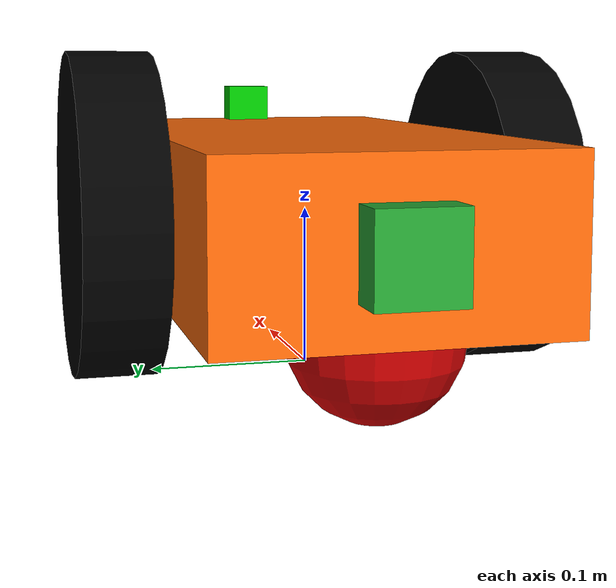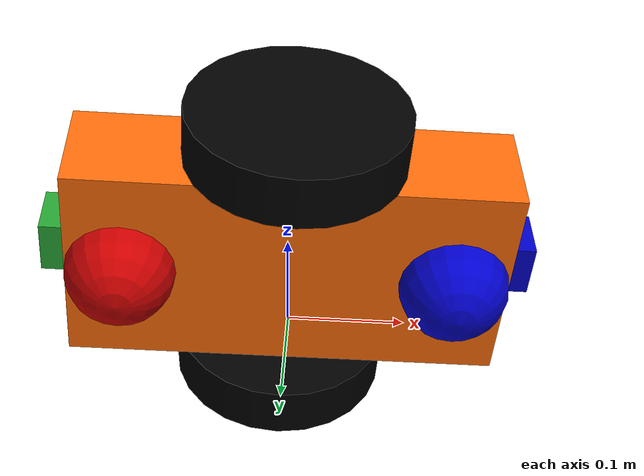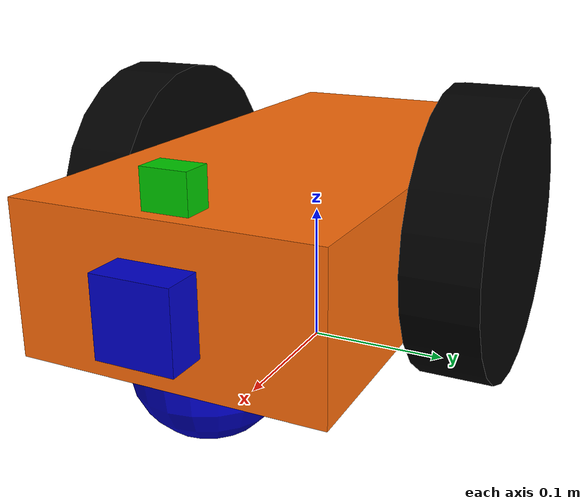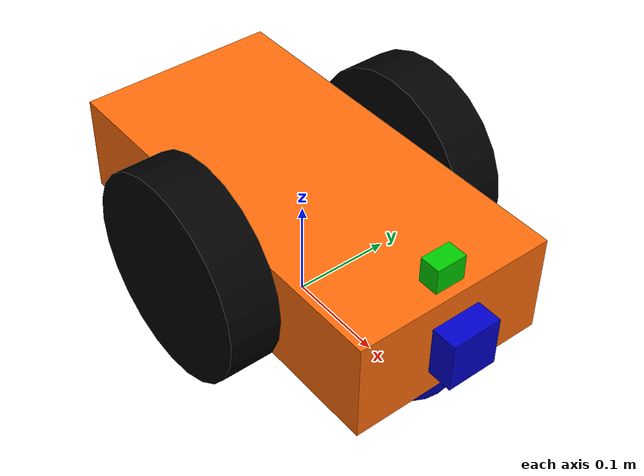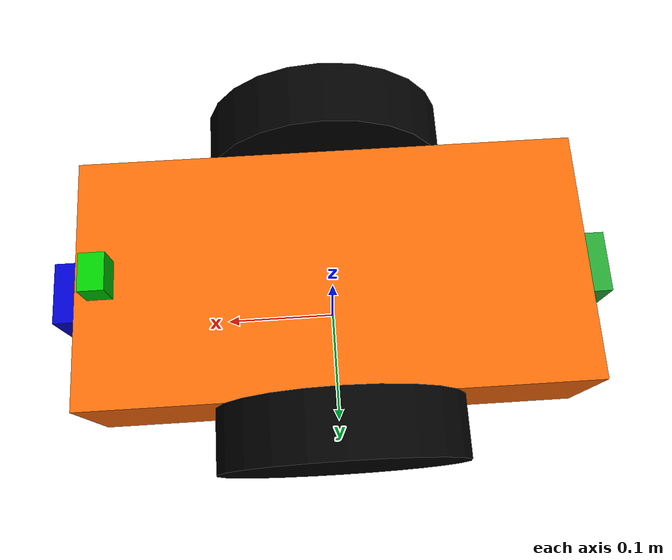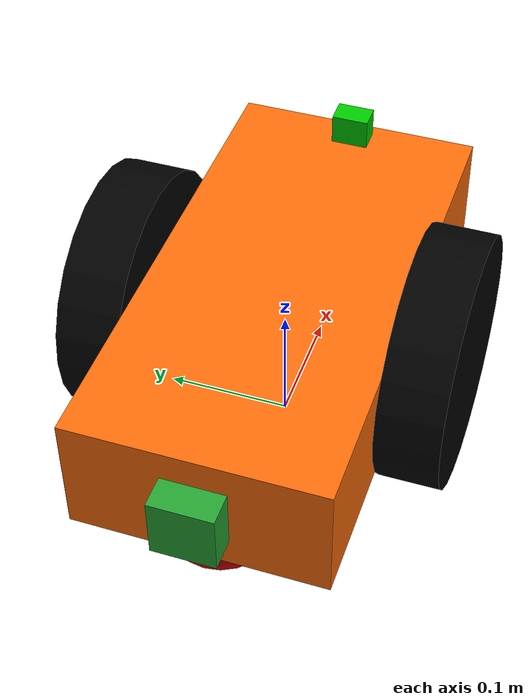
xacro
<?xml version="1.0"?>
<robot name="j_first_bot" xmlns:xacro="http://www.ros.org/wiki/xacro">
        <!-- Put here the robot description -->
	<xacro:property name="PI" value="3.1415926535897931"/>

	<xacro:property name="chassisHeight" value="0.1"/>
	<xacro:property name="chassisLength" value="0.4"/>
	<xacro:property name="chassisWidth" value="0.2"/>
	<xacro:property name="chassisMass" value="25"/>

	<xacro:property name="casterRadius" value="0.05"/>
	<xacro:property name="casterMass" value=".5"/>

	<xacro:property name="wheelWidth" value="0.05"/>
	<xacro:property name="wheelRadius" value="0.1"/>
	<xacro:property name="wheelPos" value="0.2"/>
	<xacro:property name="wheelMass" value=".5"/>

	<xacro:property name="cameraSize" value="0.05"/>
	<xacro:property name="cameraMass" value="0.1"/>

	<xacro:property name="laserSize" value="0.05"/>
	<xacro:property name="laserMass" value="0.1"/>

	 <xacro:include filename="$(find jitu_bot_description)/urdf/jitu_bot.gazebo" />
	 <xacro:include filename="$(find jitu_bot_description)/urdf/materials.xacro" />
	 <xacro:include filename="$(find jitu_bot_description)/urdf/macros.xacro" />

	<link name="chassis">
	  <collision>
	    <origin xyz="0 0 ${wheelRadius}" rpy="0 0 0"/>
		    <geometry>
		      	<box size="${chassisLength} ${chassisWidth} ${chassisHeight}"/>
		    </geometry>
	  </collision>
		  <visual>
		    <origin xyz="0 0 ${wheelRadius}" rpy="0 0 0"/>
		    <geometry>
		      	<box size="${chassisLength} ${chassisWidth} ${chassisHeight}"/>
		    </geometry>
		    	<material name="orange"/>
		  </visual>
	  <inertial>
		    <origin xyz="0 0 ${wheelRadius}" rpy="0 0 0"/>
		    <mass value="${chassisMass}"/>
		    <box_inertia m="${chassisMass}" x="${chassisLength}" y="${chassisWidth}" z="${chassisHeight}"/>
		  </inertial>
	</link>

	<link name="footprint" />

	<joint name="base_joint" type="fixed">
		  <parent link="footprint"/>
		  <child link="chassis"/>
	</joint>

	<joint name="chassis_joint" type="fixed">
		  <parent link="chassis"/>
		  <child link="caster_wheel"/>
	</joint>
	<!-- ********Added by Mr. J************-->

	<joint name="Camfoot" type="fixed">
			<axis xyz="0.2 1 0" />
			<origin xyz="0 0 0" rpy="0 0 0"/>
			<parent link="chassis"/>
			<child link="camera"/>
	</joint>

	<joint name="Camfoot2" type="fixed">
			<axis xyz="0.2 1 0" />
			<origin xyz="0 0 0" rpy="0 0 0"/>
			<parent link="chassis"/>
			<child link="camera2"/>
	</joint>

	<joint name="fixed2" type="fixed">
		  <parent link="chassis"/>
		  <child link="caster_wheel2"/>
	</joint>
	<!-- ********Added by Mr. J************-->

	<link name="caster_wheel">
	  <collision>
	    <origin xyz="${casterRadius-chassisLength/2} 0 ${casterRadius-chassisHeight+wheelRadius}" rpy="0 0 0"/>
	    <geometry>
	      <sphere radius="${casterRadius}"/>
	    </geometry>
	  </collision>

	  <visual>
	    <origin xyz="${casterRadius-chassisLength/2} 0 ${casterRadius-chassisHeight+wheelRadius}" rpy="0 0 0"/>
	    <geometry>
	      <sphere radius="${casterRadius}"/>
	    </geometry>
	    <material name="red"/>
	  </visual>

	  <inertial>
	    <origin xyz="${casterRadius-chassisLength/2} 0 ${casterRadius-chassisHeight+wheelRadius}" rpy="0 0 0"/>
	    <mass value="${casterMass}"/>
	    <sphere_inertia m="${casterMass}" r="${casterRadius}"/>
	  </inertial>
	</link>

	<link name="camera">
	  <collision>
		<origin xyz="0.1 0.1 0.1" rpy="0 0 0"/>

		<geometry>
		  <box size="${cameraSize} ${cameraSize} ${cameraSize}"/>

		</geometry>
	  </collision>

	  <visual>
		<origin xyz="0.2 0.0 0.1" rpy="0 0 0"/>
		<geometry>
		  <box size="${cameraSize} ${cameraSize} ${cameraSize}"/>
		</geometry>
		<material name="blue"/>
	  </visual>

	  <inertial>
		<mass value="${cameraMass}" />
		<origin xyz="0 0 0" rpy="0 0 0"/>
		<box_inertia m="${cameraMass}" x="${cameraSize}" y="${cameraSize}" z="${cameraSize}" />
	  </inertial>
	</link>
	<!-- ********Added by Mr. J************-->

		<link name="camera2">
	  <collision>
		<origin xyz="0.1 0.1 0.1" rpy="0 0 0"/>

		<geometry>
		  <box size="${cameraSize} ${cameraSize} ${cameraSize}"/>

		</geometry>
	  </collision>

	  <visual>
		<origin xyz="-0.2 0.0 0.1" rpy="0 0 0"/>
		<geometry>
		  <box size="${cameraSize} ${cameraSize} ${cameraSize}"/>
		</geometry>

	  </visual>

	  <inertial>
		<mass value="${cameraMass}" />
		<origin xyz="0 0 0" rpy="0 0 0"/>
		<box_inertia m="${cameraMass}" x="${cameraSize}" y="${cameraSize}" z="${cameraSize}" />
	  </inertial>
	</link>

	<link name="caster_wheel2">
	  <collision>
	    <origin xyz="${casterRadius-chassisLength/2} 0 ${casterRadius-chassisHeight+wheelRadius}" rpy="0 0 0"/>
	    <geometry>
	      <sphere radius="${casterRadius}"/>
	    </geometry>
	  </collision>

	  <visual>
	    <origin xyz="${casterRadius+chassisLength/2-2*casterRadius} 0 ${casterRadius-chassisHeight+wheelRadius}" rpy="0 0 0"/>
	    <geometry>
	      <sphere radius="${casterRadius}"/>
	    </geometry>
	    <material name="blue"/>
	  </visual>

	  <inertial>
	    <origin xyz="${casterRadius-chassisLength/2} 0 ${casterRadius-chassisHeight+wheelRadius}" rpy="0 0 0"/>
	    <mass value="${casterMass}"/>
	    <sphere_inertia m="${casterMass}" r="${casterRadius}"/>
	  </inertial>
	</link>
	<!-- ********Added by Mr. J************-->

	<!-- ********* Laser ****************-->
	<!-- ********Added by Mr. J************-->

	<joint name="base_laser_link" type="fixed">
		<origin xyz="0.18 0.00 0.16" rpy="3.14159 0 0" />
		<parent link="chassis" />
		<child link="base_laser_link" />
	</joint>

  <link name="base_laser_link">
	    <collision>
		<origin xyz="0.4 0.1 0.1" rpy="0 0 0"/>

		<geometry>
		  <box size="${laserSize} ${laserSize} ${laserSize}"/>

		</geometry>
	  </collision>
    <visual>

		  <geometry>
			<box size="0.02 0.03 0.03" />
		  </geometry>
		<material name="green" />
    </visual>
    <inertial>
		  <mass value="0.000001" />
		  <origin xyz="0 0 0" />
		  <inertia ixx="0.0001" ixy="0.0" ixz="0.0"
			iyy="0.0001" iyz="0.0"
			izz="0.0001" />
    </inertial>
  </link>

	<wheel lr="left" tY="1"/>
	<wheel lr="right" tY="-1"/>

</robot>

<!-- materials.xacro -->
<robot name="j_first_bot" xmlns:xacro="http://www.ros.org/wiki/xacro">
        <!-- Put here the robot description -->

<material name="black">
  <color rgba="0.0 0.0 0.0 1.0"/>
</material>

<material name="blue">
  <color rgba="0.0 0.0 0.8 1.0"/>
</material>

<material name="green">
  <color rgba="0.0 0.8 0.0 1.0"/>
</material>

<material name="grey">
  <color rgba="0.2 0.2 0.2 1.0"/>
</material>

<material name="orange">
  <color rgba="${255/255} ${108/255} ${10/255} 1.0"/>
</material>

<material name="brown">
  <color rgba="${222/255} ${207/255} ${195/255} 1.0"/>
</material>

<material name="red">
  <color rgba="0.8 0.0 0.0 1.0"/>
</material>

<material name="white">
  <color rgba="1.0 1.0 1.0 1.0"/>
</material>

</robot>

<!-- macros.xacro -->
<robot name="j_first_bot" xmlns:xacro="http://www.ros.org/wiki/xacro">

<macro name="cylinder_inertia" params="m r h">
  <inertia  ixx="${m*(3*r*r+h*h)/12}" ixy = "0" ixz = "0"
    iyy="${m*(3*r*r+h*h)/12}" iyz = "0"
    izz="${m*r*r/2}"
  />
</macro>

<macro name="box_inertia" params="m x y z">
  <inertia  ixx="${m*(y*y+z*z)/12}" ixy = "0" ixz = "0"
    iyy="${m*(x*x+z*z)/12}" iyz = "0"
    izz="${m*(x*x+z*z)/12}"
  />
</macro>

<macro name="sphere_inertia" params="m r">
  <inertia  ixx="${2*m*r*r/5}" ixy = "0" ixz = "0"
    iyy="${2*m*r*r/5}" iyz = "0"
    izz="${2*m*r*r/5}"
  />
</macro>

<macro name="wheel" params="lr tY">

<link name="${lr}_wheel">
  <collision>
    <origin xyz="0 0 0" rpy="0 ${PI/2} ${PI/2}" />
    <geometry>
      <cylinder length="${wheelWidth}" radius="${wheelRadius}"/>
    </geometry>

    <!-- addition of friction by Mr. J -->
    <surface>
        <friction>
          <ode>
            <mu>1500.01</mu>
            <mu2>150.01</mu2>
          </ode>
        </friction>
      </surface>

  </collision>

  <visual>
    <origin xyz="0 0 0" rpy="0 ${PI/2} ${PI/2}" />
    <geometry>
      <cylinder length="${wheelWidth}" radius="${wheelRadius}"/>
    </geometry>
    <material name="black"/>
  </visual>

  <inertial>
    <origin xyz="0 0 0" rpy="0 ${PI/2} ${PI/2}" />
    <mass value="${wheelMass}"/>
    <cylinder_inertia m="${wheelMass}" r="${wheelRadius}" h="${wheelWidth}"/>
  </inertial>
</link>
 <gazebo reference="${lr}_wheel">
		  <mu1 value="100.0"/>
		  <mu2 value="200.0"/>
		  <kp  value="10000000.0" />
		  <kd  value="1.0" />

  <material>Gazebo/Red</material>
</gazebo>

<joint name="${lr}_wheel_hinge" type="continuous">
	  <parent link="chassis"/>
	  <child link="${lr}_wheel"/>
	<origin xyz="${-wheelPos+chassisLength/2} ${tY*wheelWidth/2+tY*chassisWidth/2} ${wheelRadius}" rpy="0 0 0" />
	  <axis xyz="0 1 0" rpy="0 0 0" />
	  <limit effort="100" velocity="100"/>
	  <joint_properties damping="0.0" friction="0.0"/>
</joint>

	<transmission name="${lr}_trans">
		  <type>transmission_interface/SimpleTransmission</type>
		  <joint name="${lr}_wheel_hinge">
   <hardwareInterface>EffortJointInterface</hardwareInterface>

</joint>
	  <actuator name="${lr}Motor">
		    <hardwareInterface>EffortJointInterface</hardwareInterface>
		    <mechanicalReduction>10</mechanicalReduction>
	  </actuator>
	</transmission>

</macro>
</robot>
